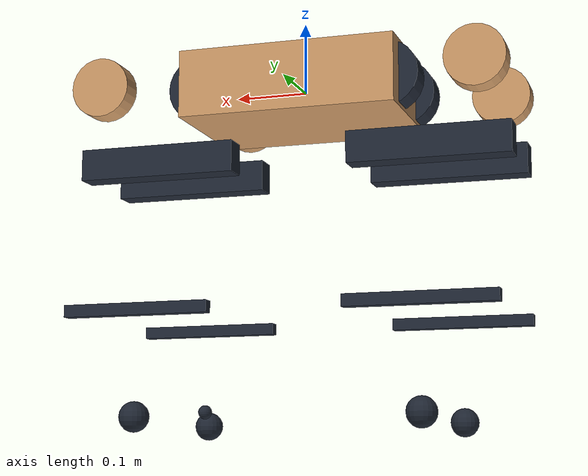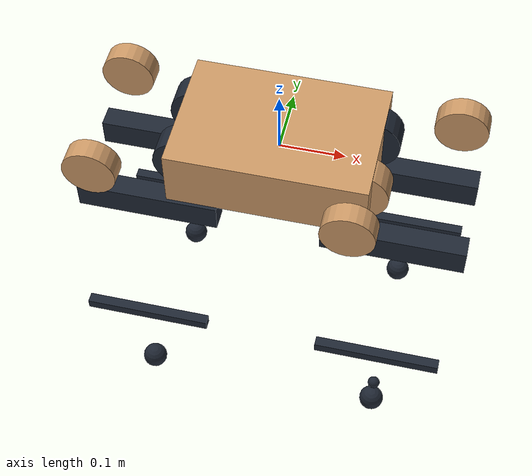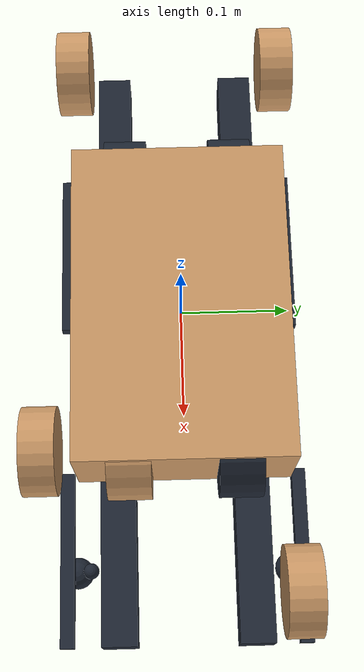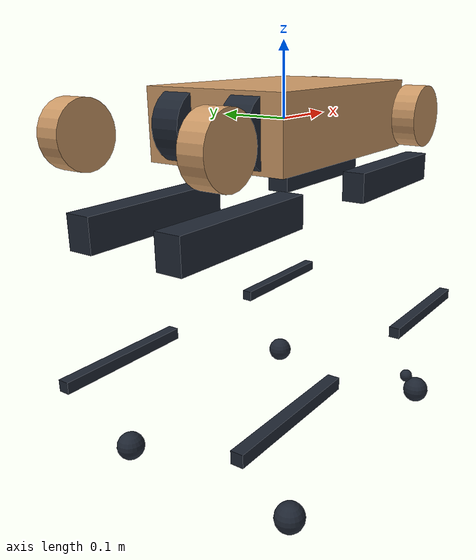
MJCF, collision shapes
<mujoco model="legs">
    <compiler angle="radian" coordinate="local" inertiafromgeom="true" meshdir="/home/lenovo/sim_leggedgym/resources/meshes/" />
    <option integrator="RK4" timestep="0.01"/>
    <size njmax="500" nconmax="100" />
        <default>
            <joint armature="1" damping="0.0" limited="true"/>
            <geom conaffinity="0" condim="3" density="5.0" friction="1 0.5 0.5" margin="0.01" rgba="0.8 0.6 0.4 1"/>
        </default>
    <asset>
        <mesh name="trunk" file="trunk.stl" />
        <mesh name="hip" file="hip.stl" />
        <mesh name="thigh_mirror" file="thigh_mirror.stl" />
        <mesh name="calf" file="calf.stl" />
        <mesh name="thigh" file="thigh.stl" />
    </asset>
    <worldbody>

        <light cutoff="100" diffuse="1 1 1" dir="-0 0 -1.3" directional="true" exponent="1" pos="0 0 1.3" specular=".1 .1 .1"/>
        <geom size="0.15 0.1 0.0465" type="box" contype="0" conaffinity="0" group="1" />
        <geom type="mesh" contype="0" conaffinity="0" group="1" rgba="0.12 0.15 0.2 1" mesh="trunk" />
        <geom size="0.15 0.1 0.0465" type="box" rgba="0.12 0.15 0.2 1" />
        <geom size="0.15 0.1 0.0465" type="box" contype="0" conaffinity="0" group="1" rgba="0.8 0 0 1" />
        <geom size="0.0005 0.0005 0.0005" type="box" rgba="0.8 0 0 1" />
        <body name="FR_hip" pos="0.13 -0.05 0">
            <inertial pos="-0.00266413 -0.0163358 2.49436e-05" quat="0.475134 0.521822 -0.477036 0.523818" mass="0.864993" diaginertia="0.00151807 0.00143717 0.000946744" />
            <joint name="FR_hip_joint" pos="0 0 0" axis="1 0 0" limited="true" range="-0.802851 0.802851" />
            <geom quat="0 1 0 0" type="mesh" contype="0" conaffinity="0" group="1" mesh="hip" />
            <geom size="0.046 0.02" quat="0.707107 0.707107 0 0" type="cylinder" />
            <geom size="0.041 0.016" pos="0 -0.081 0" quat="0.707107 0.707107 0 0" type="cylinder" />
            <body name="FR_thigh" pos="0.06 -0.015 0">
                <inertial pos="-0.003237 0.022327 -0.027326" quat="0.999125 -0.00256393 -0.0409531 -0.00806091" mass="1.013" diaginertia="0.00555739 0.00513936 0.00133944" />
                <joint name="FR_thigh_joint" pos="0 0 0" axis="0 1 0" limited="true" range="-1.0472 4.18879" />
                <geom type="mesh" contype="0" conaffinity="0" group="1" rgba="0.12 0.15 0.2 1" mesh="thigh_mirror" />
                <geom size="0.0215 0.017 0.11" pos="0 0 -0.1" quat="0.707107 0 0.707107 0" type="box" rgba="0.12 0.15 0.2 1" />
                <body name="FR_calf" pos="0 -0.07125 -0.21183">
                    <inertial pos="0.00472659 0 -0.142595" quat="0.706906 0.0168526 0.0168526 0.706906" mass="0.226" diaginertia="0.00380047 0.00379113 3.53223e-05" />
                    <joint name="FR_calf_joint" pos="0 0 0" axis="0 1 0" limited="true" range="-2.69653 -0.916298" />
                    <geom type="mesh" contype="0" conaffinity="0" group="1" rgba="0.12 0.15 0.2 1" mesh="calf" />
                    <geom size="0.008 0.008 0.1" pos="0 0 -0.1" quat="0.707107 0 0.707107 0" type="box" rgba="0.12 0.15 0.2 1" />
                    <geom size="0.01" pos="0 0.018 -0.22" contype="0" conaffinity="0" group="1" rgba="0.12 0.15 0.2 1" />
                    <geom size="0.02" pos="0 0 -0.24" rgba="0.12 0.15 0.2 1" />
                </body>
            </body>
        </body>
        <body name="FL_hip" pos="0.13 0.05 0">
            <inertial pos="0.0227338 0.0102794 2.49436e-05" quat="0.415693 0.415059 0.572494 0.571993" mass="0.864993" diaginertia="0.00366077 0.00338628 0.000591358" />
            <joint name="FL_hip_joint" pos="0 0 0" axis="1 0 0" limited="true" range="-0.802851 0.802851" />
            <geom type="mesh" contype="0" conaffinity="0" group="1" rgba="0.12 0.15 0.2 1" mesh="hip" />
            <geom size="0.046 0.02" quat="0.707107 0.707107 0 0" type="cylinder" rgba="0.12 0.15 0.2 1" />
            <geom size="0.041 0.016" pos="0.13 0.05 0" quat="0.707107 0.707107 0 0" type="cylinder" />
            <body name="FL_thigh" pos="0.06 0.015 0">
                <inertial pos="-0.003237 -0.022327 -0.027326" quat="0.999125 0.00256393 -0.0409531 0.00806091" mass="1.013" diaginertia="0.00555739 0.00513936 0.00133944" />
                <joint name="FL_thigh_joint" pos="0 0 0" axis="0 1 0" limited="true" range="-1.0472 4.18879" />
                <geom type="mesh" contype="0" conaffinity="0" group="1" rgba="0.12 0.15 0.2 1" mesh="thigh" />
                <geom size="0.0215 0.017 0.11" pos="0 0 -0.1" quat="0.707107 0 0.707107 0" type="box" rgba="0.12 0.15 0.2 1" />
                <body name="FL_calf" pos="0 0.07125 -0.21183">
                    <inertial pos="0.00472659 0 -0.142595" quat="0.706906 0.0168526 0.0168526 0.706906" mass="0.226" diaginertia="0.00380047 0.00379113 3.53223e-05" />
                    <joint name="FL_calf_joint" pos="0 0 0" axis="0 1 0" limited="true" range="-2.69653 -0.916298" />
                    <geom type="mesh" contype="0" conaffinity="0" group="1" rgba="0.12 0.15 0.2 1" mesh="calf" />
                    <geom size="0.008 0.008 0.1" pos="0 0 -0.1" quat="0.707107 0 0.707107 0" type="box" rgba="0.12 0.15 0.2 1" />
                    <geom size="0.01" pos="0 0 -0.24" contype="0" conaffinity="0" group="1" rgba="0.12 0.15 0.2 1" />
                    <geom size="0.02" pos="0 0 -0.24" rgba="0.12 0.15 0.2 1" />
                </body>
            </body>
        </body>
        <body name="RR_hip" pos="-0.13 -0.05 0">
            <inertial pos="-0.0227338 -0.0102794 2.49436e-05" quat="0.415059 0.415693 0.571993 0.572494" mass="0.864993" diaginertia="0.00366077 0.00338628 0.000591358" />
            <joint name="RR_hip_joint" pos="0 0 0" axis="1 0 0" limited="true" range="-0.802851 0.802851" />
            <geom quat="0 0 0 -1" type="mesh" contype="0" conaffinity="0" group="1" rgba="0.12 0.15 0.2 1" mesh="hip" />
            <geom size="0.046 0.02" quat="0.707107 0.707107 0 0" type="cylinder" rgba="0.12 0.15 0.2 1" />
            <geom size="0.041 0.016" pos="-0.13 -0.05 0" quat="0.707107 0.707107 0 0" type="cylinder" />
            <body name="RR_thigh" pos="-0.06 -0.015 0">
                <inertial pos="-0.003237 0.022327 -0.027326" quat="0.999125 -0.00256393 -0.0409531 -0.00806091" mass="1.013" diaginertia="0.00555739 0.00513936 0.00133944" />
                <joint name="RR_thigh_joint" pos="0 0 0" axis="0 1 0" limited="true" range="-1.0472 4.18879" />
                <geom type="mesh" contype="0" conaffinity="0" group="1" rgba="0.12 0.15 0.2 1" mesh="thigh_mirror" />
                <geom size="0.0215 0.017 0.11" pos="0 0 -0.1" quat="0.707107 0 0.707107 0" type="box" rgba="0.12 0.15 0.2 1" />
                <body name="RR_calf" pos="0 -0.07125 -0.21183">
                    <inertial pos="0.00472659 0 -0.142595" quat="0.706906 0.0168526 0.0168526 0.706906" mass="0.226" diaginertia="0.00380047 0.00379113 3.53223e-05" />
                    <joint name="RR_calf_joint" pos="0 0 0" axis="0 1 0" limited="true" range="-2.69653 -0.916298" />
                    <geom type="mesh" contype="0" conaffinity="0" group="1" rgba="0.12 0.15 0.2 1" mesh="calf" />
                    <geom size="0.008 0.008 0.1" pos="0 0 -0.1" quat="0.707107 0 0.707107 0" type="box" rgba="0.12 0.15 0.2 1" />
                    <geom size="0.01" pos="0 0 -0.24" contype="0" conaffinity="0" group="1" rgba="0.12 0.15 0.2 1" />
                    <geom size="0.02" pos="0 0 -0.24" rgba="0.12 0.15 0.2 1" />
                </body>
            </body>
        </body>
        <body name="RL_hip" pos="-0.13 0.05 0">
            <inertial pos="-0.0227338 0.0102794 2.49436e-05" quat="0.572494 0.571993 0.415693 0.415059" mass="0.864993" diaginertia="0.00366077 0.00338628 0.000591358" />
            <joint name="RL_hip_joint" pos="0 0 0" axis="1 0 0" limited="true" range="-0.802851 0.802851" />
            <geom quat="0 0 1 0" type="mesh" contype="0" conaffinity="0" group="1" rgba="0.12 0.15 0.2 1" mesh="hip" />
            <geom size="0.046 0.02" quat="0.707107 0.707107 0 0" type="cylinder" rgba="0.12 0.15 0.2 1" />
            <geom size="0.041 0.016" pos="-0.13 0.05 0" quat="0.707107 0.707107 0 0" type="cylinder" />
            <body name="RL_thigh" pos="-0.06 0.015 0">
                <inertial pos="-0.003237 -0.022327 -0.027326" quat="0.999125 0.00256393 -0.0409531 0.00806091" mass="1.013" diaginertia="0.00555739 0.00513936 0.00133944" />
                <joint name="RL_thigh_joint" pos="0 0 0" axis="0 1 0" limited="true" range="-1.0472 4.18879" />
                <geom type="mesh" contype="0" conaffinity="0" group="1" rgba="0.12 0.15 0.2 1" mesh="thigh" />
                <geom size="0.0215 0.017 0.11" pos="0 0 -0.1" quat="0.707107 0 0.707107 0" type="box" rgba="0.12 0.15 0.2 1" />
                <body name="RL_calf" pos="0 0.07125 -0.21183">
                    <inertial pos="0.00472659 0 -0.142595" quat="0.706906 0.0168526 0.0168526 0.706906" mass="0.226" diaginertia="0.00380047 0.00379113 3.53223e-05" />
                    <joint name="RL_calf_joint" pos="0 0 0" axis="0 1 0" limited="true" range="-2.69653 -0.916298" />
                    <geom type="mesh" contype="0" conaffinity="0" group="1" rgba="0.12 0.15 0.2 1" mesh="calf" />
                    <geom size="0.008 0.008 0.1" pos="0 0 -0.1" quat="0.707107 0 0.707107 0" type="box" rgba="0.12 0.15 0.2 1" />
                    <geom size="0.01" pos="0 0 -0.24" contype="0" conaffinity="0" group="1" rgba="0.12 0.15 0.2 1" />
                    <geom size="0.02" pos="0 0 -0.24" rgba="0.12 0.15 0.2 1" />
                </body>
            </body>
        </body>
    </worldbody>

    <actuator>
      <motor ctrllimited="true" ctrlrange="-1.0 1.0" joint="RR_hip_joint" gear="150"/>
      <motor ctrllimited="true" ctrlrange="-1.0 1.0" joint="RR_thigh_joint" gear="150"/>
      <motor ctrllimited="true" ctrlrange="-1.0 1.0" joint="RR_calf_joint" gear="150"/>

      <motor ctrllimited="true" ctrlrange="-1.0 1.0" joint="RL_hip_joint" gear="150"/>
      <motor ctrllimited="true" ctrlrange="-1.0 1.0" joint="RL_thigh_joint" gear="150"/>
      <motor ctrllimited="true" ctrlrange="-1.0 1.0" joint="RL_calf_joint" gear="150"/>

      <motor ctrllimited="true" ctrlrange="-1.0 1.0" joint="FL_hip_joint" gear="150"/>
      <motor ctrllimited="true" ctrlrange="-1.0 1.0" joint="FL_thigh_joint" gear="150"/>
      <motor ctrllimited="true" ctrlrange="-1.0 1.0" joint="FL_calf_joint" gear="150"/>

      <motor ctrllimited="true" ctrlrange="-1.0 1.0" joint="FR_hip_joint" gear="150"/>
      <motor ctrllimited="true" ctrlrange="-1.0 1.0" joint="FR_thigh_joint" gear="150"/>
      <motor ctrllimited="true" ctrlrange="-1.0 1.0" joint="FR_calf_joint" gear="150"/>
    </actuator>
</mujoco>
